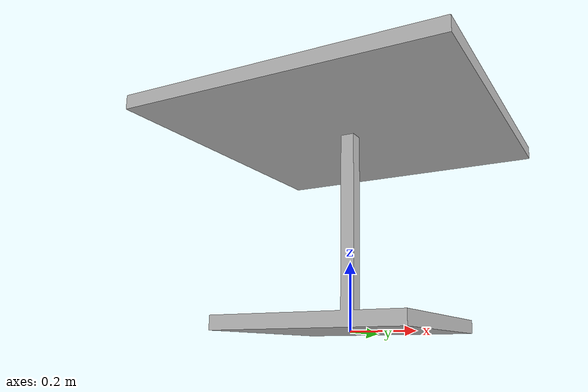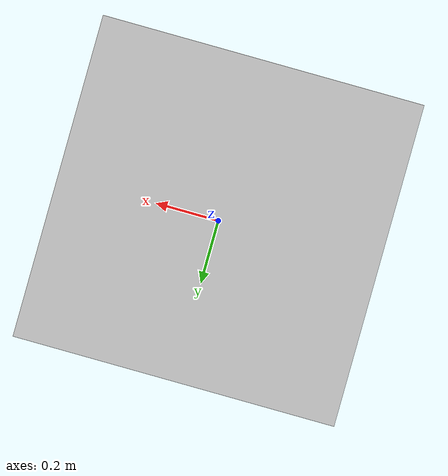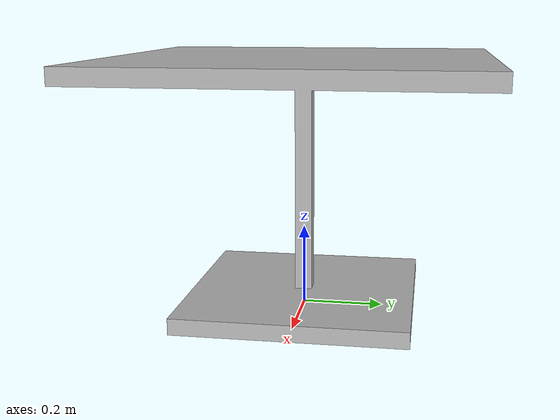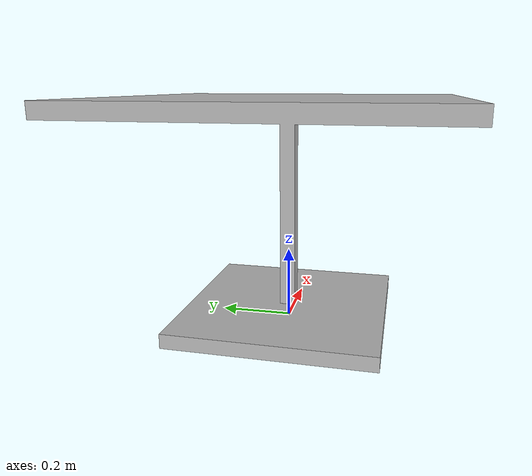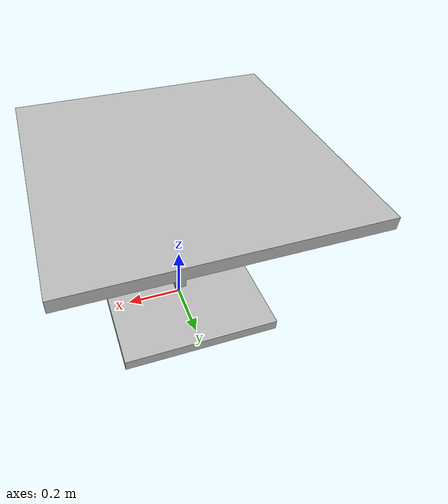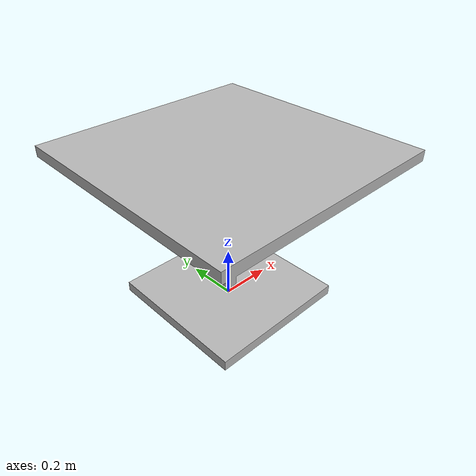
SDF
<sdf version='1.6'>
  <model name='table'>
    <link name='table'>
      <pose frame=''>0 0 0 0 -0 0</pose>
      <inertial>
        <pose frame=''>-0 0 0.58188 0 -0 0</pose>
        <mass>10</mass>
        <inertia>
          <ixx>1.7577</ixx>
          <ixy>-3.61665e-16</ixy>
          <ixz>3.53512e-17</ixz>
          <iyy>1.7577</iyy>
          <iyz>-1.00755e-16</iyz>
          <izz>1.12058</izz>
        </inertia>
      </inertial>
      <collision name='table_collision'>
        <pose frame=''>0 0 0 1.5708 -0 0</pose>
        <geometry>
          <mesh>
            <scale>1 1 1</scale>
            <uri>model://sawyer_gazebo_env/models/table/table.STL</uri>
          </mesh>
        </geometry>
        <surface>
          <contact>
            <ode/>
          </contact>
          <friction>
            <ode/>
          </friction>
        </surface>
      </collision>
      <visual name='table_visual'>
        <pose frame=''>0 0 0 1.5708 -0 0</pose>
        <geometry>
          <mesh>
            <scale>1 1 1</scale>
            <uri>model://sawyer_gazebo_env/models/table/table.STL</uri>
          </mesh>
        </geometry>
        <material>
          <script>
            <uri>__default__</uri>
            <name>__default__</name>
          </script>
        </material>
      </visual>
      <gravity>1</gravity>
      <velocity_decay/>
      <self_collide>0</self_collide>
      <sensor name='table_contact_sensor' type='contact'>
        <always_on>1</always_on>
        <update_rate>100</update_rate>
        <contact>
          <collision>table_collision</collision>
          <topic>__default_topic__</topic>
        </contact>
        <plugin name='gazebo_ros_bumper_controller' filename='libgazebo_ros_bumper.so'>
          <bumperTopicName>/table_contact_sensor_state</bumperTopicName>
          <frameName>table</frameName>
        </plugin>
      </sensor>
    </link>
  </model>
</sdf>
